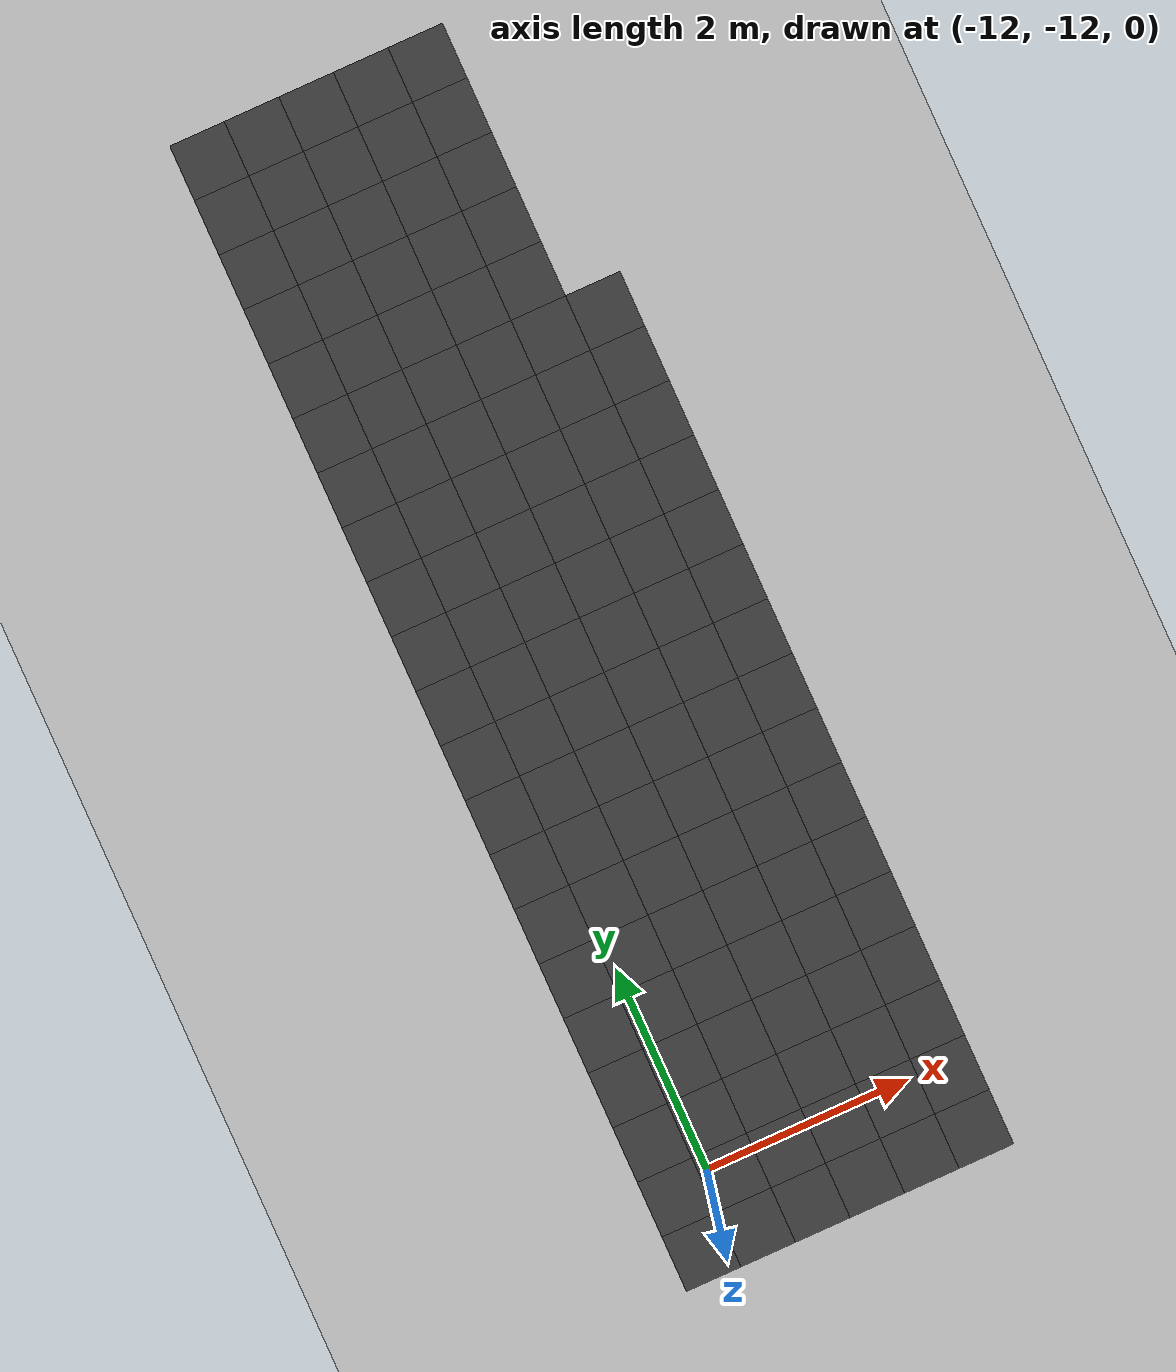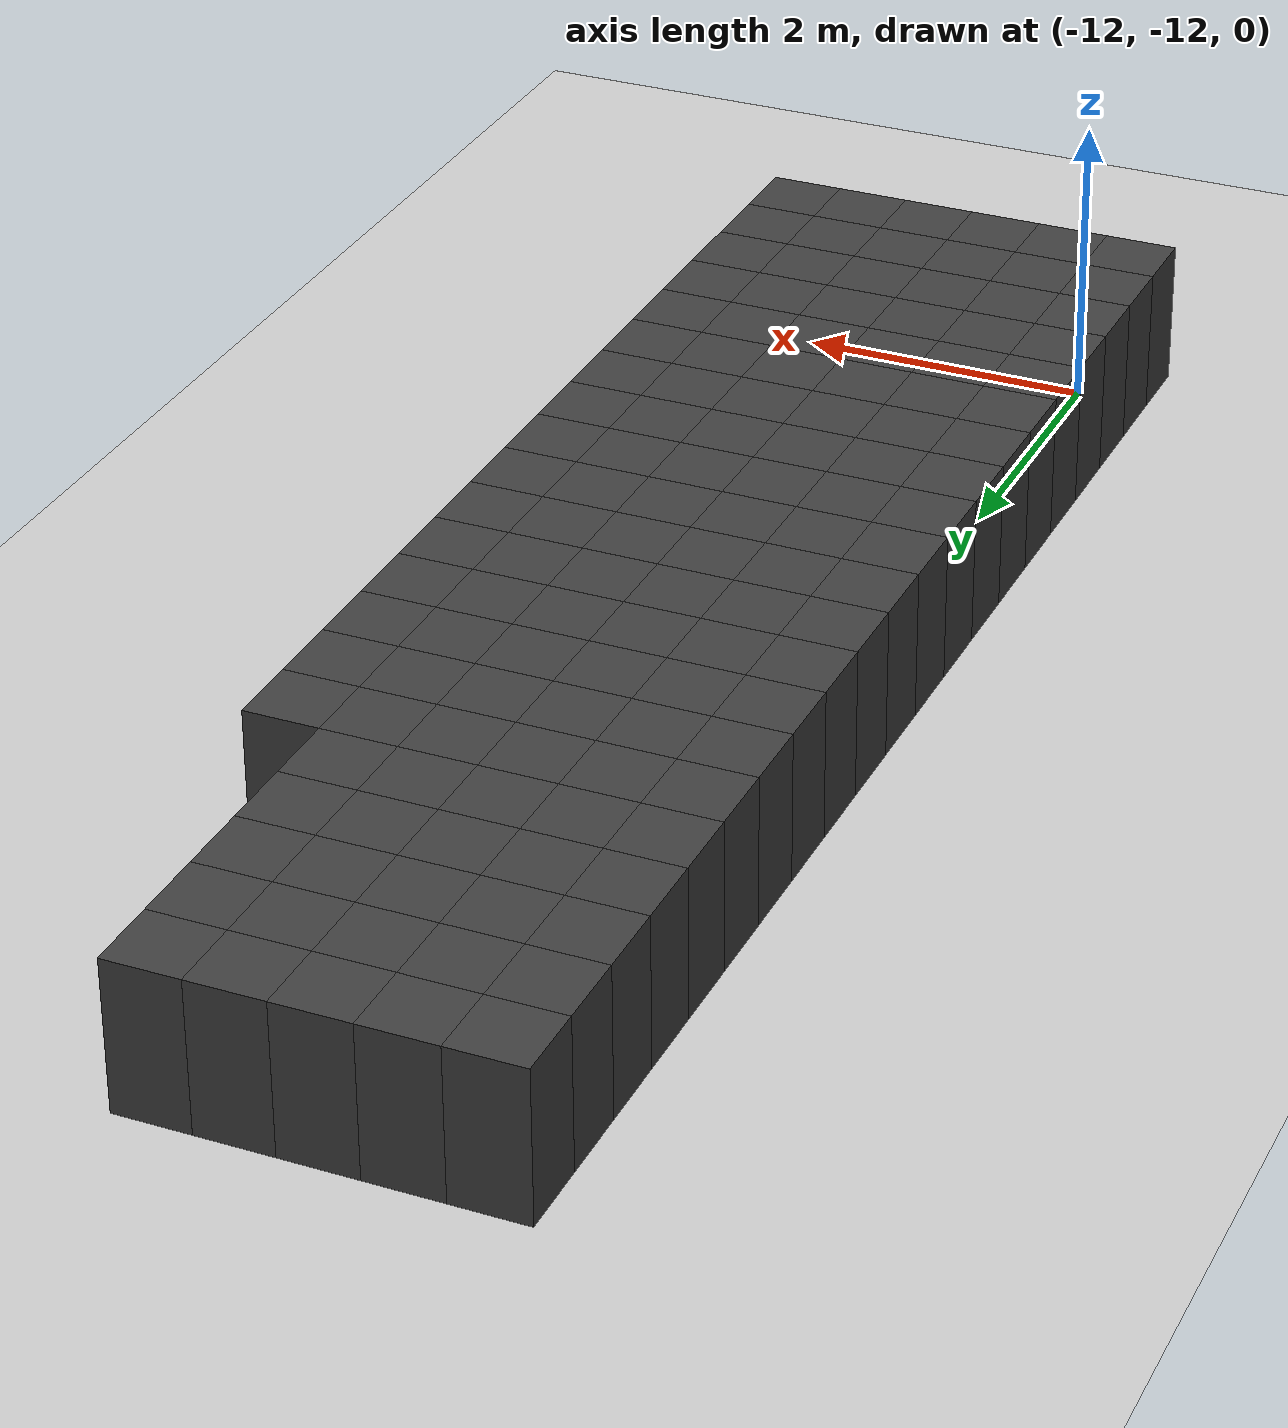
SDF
<sdf version="1.7">
 <world name="map_14547">
  <model name="ground_plane">
   <static>true</static>
   <link name="link">
    <collision name="collision">
     <geometry><plane><normal>0 0 1</normal><size>200 200</size></plane></geometry>
    </collision>
    <visual name="visual">
     <geometry><plane><normal>0 0 1</normal><size>200 200</size></plane></geometry>
     <material><ambient>0.8 0.8 0.8 1</ambient><diffuse>0.8 0.8 0.8 1</diffuse></material>
    </visual>
   </link>
  </model>
  <model name="maze_environment">
   <static>true</static>
   <link name="wall_1027">
    <pose>-12.250 -2.250 0.500 0 0 0</pose>
    <collision name="col"><geometry><box><size>0.5 0.5 1.0</size></box></geometry></collision>
    <visual name="vis">
     <geometry><box><size>0.5 0.5 1.0</size></box></geometry>
     <material><ambient>0.15 0.15 0.15 1</ambient><diffuse>0.25 0.25 0.25 1</diffuse></material>
    </visual>
   </link>
   <link name="wall_1028">
    <pose>-11.750 -2.250 0.500 0 0 0</pose>
    <collision name="col"><geometry><box><size>0.5 0.5 1.0</size></box></geometry></collision>
    <visual name="vis">
     <geometry><box><size>0.5 0.5 1.0</size></box></geometry>
     <material><ambient>0.15 0.15 0.15 1</ambient><diffuse>0.25 0.25 0.25 1</diffuse></material>
    </visual>
   </link>
   <link name="wall_1029">
    <pose>-11.250 -2.250 0.500 0 0 0</pose>
    <collision name="col"><geometry><box><size>0.5 0.5 1.0</size></box></geometry></collision>
    <visual name="vis">
     <geometry><box><size>0.5 0.5 1.0</size></box></geometry>
     <material><ambient>0.15 0.15 0.15 1</ambient><diffuse>0.25 0.25 0.25 1</diffuse></material>
    </visual>
   </link>
   <link name="wall_1030">
    <pose>-10.750 -2.250 0.500 0 0 0</pose>
    <collision name="col"><geometry><box><size>0.5 0.5 1.0</size></box></geometry></collision>
    <visual name="vis">
     <geometry><box><size>0.5 0.5 1.0</size></box></geometry>
     <material><ambient>0.15 0.15 0.15 1</ambient><diffuse>0.25 0.25 0.25 1</diffuse></material>
    </visual>
   </link>
   <link name="wall_1031">
    <pose>-10.250 -2.250 0.500 0 0 0</pose>
    <collision name="col"><geometry><box><size>0.5 0.5 1.0</size></box></geometry></collision>
    <visual name="vis">
     <geometry><box><size>0.5 0.5 1.0</size></box></geometry>
     <material><ambient>0.15 0.15 0.15 1</ambient><diffuse>0.25 0.25 0.25 1</diffuse></material>
    </visual>
   </link>
   <link name="wall_1057">
    <pose>-12.250 -2.750 0.500 0 0 0</pose>
    <collision name="col"><geometry><box><size>0.5 0.5 1.0</size></box></geometry></collision>
    <visual name="vis">
     <geometry><box><size>0.5 0.5 1.0</size></box></geometry>
     <material><ambient>0.15 0.15 0.15 1</ambient><diffuse>0.25 0.25 0.25 1</diffuse></material>
    </visual>
   </link>
   <link name="wall_1058">
    <pose>-11.750 -2.750 0.500 0 0 0</pose>
    <collision name="col"><geometry><box><size>0.5 0.5 1.0</size></box></geometry></collision>
    <visual name="vis">
     <geometry><box><size>0.5 0.5 1.0</size></box></geometry>
     <material><ambient>0.15 0.15 0.15 1</ambient><diffuse>0.25 0.25 0.25 1</diffuse></material>
    </visual>
   </link>
   <link name="wall_1059">
    <pose>-11.250 -2.750 0.500 0 0 0</pose>
    <collision name="col"><geometry><box><size>0.5 0.5 1.0</size></box></geometry></collision>
    <visual name="vis">
     <geometry><box><size>0.5 0.5 1.0</size></box></geometry>
     <material><ambient>0.15 0.15 0.15 1</ambient><diffuse>0.25 0.25 0.25 1</diffuse></material>
    </visual>
   </link>
   <link name="wall_1060">
    <pose>-10.750 -2.750 0.500 0 0 0</pose>
    <collision name="col"><geometry><box><size>0.5 0.5 1.0</size></box></geometry></collision>
    <visual name="vis">
     <geometry><box><size>0.5 0.5 1.0</size></box></geometry>
     <material><ambient>0.15 0.15 0.15 1</ambient><diffuse>0.25 0.25 0.25 1</diffuse></material>
    </visual>
   </link>
   <link name="wall_1061">
    <pose>-10.250 -2.750 0.500 0 0 0</pose>
    <collision name="col"><geometry><box><size>0.5 0.5 1.0</size></box></geometry></collision>
    <visual name="vis">
     <geometry><box><size>0.5 0.5 1.0</size></box></geometry>
     <material><ambient>0.15 0.15 0.15 1</ambient><diffuse>0.25 0.25 0.25 1</diffuse></material>
    </visual>
   </link>
   <link name="wall_1090">
    <pose>-12.250 -3.250 0.500 0 0 0</pose>
    <collision name="col"><geometry><box><size>0.5 0.5 1.0</size></box></geometry></collision>
    <visual name="vis">
     <geometry><box><size>0.5 0.5 1.0</size></box></geometry>
     <material><ambient>0.15 0.15 0.15 1</ambient><diffuse>0.25 0.25 0.25 1</diffuse></material>
    </visual>
   </link>
   <link name="wall_1091">
    <pose>-11.750 -3.250 0.500 0 0 0</pose>
    <collision name="col"><geometry><box><size>0.5 0.5 1.0</size></box></geometry></collision>
    <visual name="vis">
     <geometry><box><size>0.5 0.5 1.0</size></box></geometry>
     <material><ambient>0.15 0.15 0.15 1</ambient><diffuse>0.25 0.25 0.25 1</diffuse></material>
    </visual>
   </link>
   <link name="wall_1092">
    <pose>-11.250 -3.250 0.500 0 0 0</pose>
    <collision name="col"><geometry><box><size>0.5 0.5 1.0</size></box></geometry></collision>
    <visual name="vis">
     <geometry><box><size>0.5 0.5 1.0</size></box></geometry>
     <material><ambient>0.15 0.15 0.15 1</ambient><diffuse>0.25 0.25 0.25 1</diffuse></material>
    </visual>
   </link>
   <link name="wall_1093">
    <pose>-10.750 -3.250 0.500 0 0 0</pose>
    <collision name="col"><geometry><box><size>0.5 0.5 1.0</size></box></geometry></collision>
    <visual name="vis">
     <geometry><box><size>0.5 0.5 1.0</size></box></geometry>
     <material><ambient>0.15 0.15 0.15 1</ambient><diffuse>0.25 0.25 0.25 1</diffuse></material>
    </visual>
   </link>
   <link name="wall_1094">
    <pose>-10.250 -3.250 0.500 0 0 0</pose>
    <collision name="col"><geometry><box><size>0.5 0.5 1.0</size></box></geometry></collision>
    <visual name="vis">
     <geometry><box><size>0.5 0.5 1.0</size></box></geometry>
     <material><ambient>0.15 0.15 0.15 1</ambient><diffuse>0.25 0.25 0.25 1</diffuse></material>
    </visual>
   </link>
   <link name="wall_1124">
    <pose>-12.250 -3.750 0.500 0 0 0</pose>
    <collision name="col"><geometry><box><size>0.5 0.5 1.0</size></box></geometry></collision>
    <visual name="vis">
     <geometry><box><size>0.5 0.5 1.0</size></box></geometry>
     <material><ambient>0.15 0.15 0.15 1</ambient><diffuse>0.25 0.25 0.25 1</diffuse></material>
    </visual>
   </link>
   <link name="wall_1125">
    <pose>-11.750 -3.750 0.500 0 0 0</pose>
    <collision name="col"><geometry><box><size>0.5 0.5 1.0</size></box></geometry></collision>
    <visual name="vis">
     <geometry><box><size>0.5 0.5 1.0</size></box></geometry>
     <material><ambient>0.15 0.15 0.15 1</ambient><diffuse>0.25 0.25 0.25 1</diffuse></material>
    </visual>
   </link>
   <link name="wall_1126">
    <pose>-11.250 -3.750 0.500 0 0 0</pose>
    <collision name="col"><geometry><box><size>0.5 0.5 1.0</size></box></geometry></collision>
    <visual name="vis">
     <geometry><box><size>0.5 0.5 1.0</size></box></geometry>
     <material><ambient>0.15 0.15 0.15 1</ambient><diffuse>0.25 0.25 0.25 1</diffuse></material>
    </visual>
   </link>
   <link name="wall_1127">
    <pose>-10.750 -3.750 0.500 0 0 0</pose>
    <collision name="col"><geometry><box><size>0.5 0.5 1.0</size></box></geometry></collision>
    <visual name="vis">
     <geometry><box><size>0.5 0.5 1.0</size></box></geometry>
     <material><ambient>0.15 0.15 0.15 1</ambient><diffuse>0.25 0.25 0.25 1</diffuse></material>
    </visual>
   </link>
   <link name="wall_1128">
    <pose>-10.250 -3.750 0.500 0 0 0</pose>
    <collision name="col"><geometry><box><size>0.5 0.5 1.0</size></box></geometry></collision>
    <visual name="vis">
     <geometry><box><size>0.5 0.5 1.0</size></box></geometry>
     <material><ambient>0.15 0.15 0.15 1</ambient><diffuse>0.25 0.25 0.25 1</diffuse></material>
    </visual>
   </link>
   <link name="wall_1160">
    <pose>-12.250 -4.250 0.500 0 0 0</pose>
    <collision name="col"><geometry><box><size>0.5 0.5 1.0</size></box></geometry></collision>
    <visual name="vis">
     <geometry><box><size>0.5 0.5 1.0</size></box></geometry>
     <material><ambient>0.15 0.15 0.15 1</ambient><diffuse>0.25 0.25 0.25 1</diffuse></material>
    </visual>
   </link>
   <link name="wall_1161">
    <pose>-11.750 -4.250 0.500 0 0 0</pose>
    <collision name="col"><geometry><box><size>0.5 0.5 1.0</size></box></geometry></collision>
    <visual name="vis">
     <geometry><box><size>0.5 0.5 1.0</size></box></geometry>
     <material><ambient>0.15 0.15 0.15 1</ambient><diffuse>0.25 0.25 0.25 1</diffuse></material>
    </visual>
   </link>
   <link name="wall_1162">
    <pose>-11.250 -4.250 0.500 0 0 0</pose>
    <collision name="col"><geometry><box><size>0.5 0.5 1.0</size></box></geometry></collision>
    <visual name="vis">
     <geometry><box><size>0.5 0.5 1.0</size></box></geometry>
     <material><ambient>0.15 0.15 0.15 1</ambient><diffuse>0.25 0.25 0.25 1</diffuse></material>
    </visual>
   </link>
   <link name="wall_1163">
    <pose>-10.750 -4.250 0.500 0 0 0</pose>
    <collision name="col"><geometry><box><size>0.5 0.5 1.0</size></box></geometry></collision>
    <visual name="vis">
     <geometry><box><size>0.5 0.5 1.0</size></box></geometry>
     <material><ambient>0.15 0.15 0.15 1</ambient><diffuse>0.25 0.25 0.25 1</diffuse></material>
    </visual>
   </link>
   <link name="wall_1164">
    <pose>-10.250 -4.250 0.500 0 0 0</pose>
    <collision name="col"><geometry><box><size>0.5 0.5 1.0</size></box></geometry></collision>
    <visual name="vis">
     <geometry><box><size>0.5 0.5 1.0</size></box></geometry>
     <material><ambient>0.15 0.15 0.15 1</ambient><diffuse>0.25 0.25 0.25 1</diffuse></material>
    </visual>
   </link>
   <link name="wall_1197">
    <pose>-12.250 -4.750 0.500 0 0 0</pose>
    <collision name="col"><geometry><box><size>0.5 0.5 1.0</size></box></geometry></collision>
    <visual name="vis">
     <geometry><box><size>0.5 0.5 1.0</size></box></geometry>
     <material><ambient>0.15 0.15 0.15 1</ambient><diffuse>0.25 0.25 0.25 1</diffuse></material>
    </visual>
   </link>
   <link name="wall_1198">
    <pose>-11.750 -4.750 0.500 0 0 0</pose>
    <collision name="col"><geometry><box><size>0.5 0.5 1.0</size></box></geometry></collision>
    <visual name="vis">
     <geometry><box><size>0.5 0.5 1.0</size></box></geometry>
     <material><ambient>0.15 0.15 0.15 1</ambient><diffuse>0.25 0.25 0.25 1</diffuse></material>
    </visual>
   </link>
   <link name="wall_1199">
    <pose>-11.250 -4.750 0.500 0 0 0</pose>
    <collision name="col"><geometry><box><size>0.5 0.5 1.0</size></box></geometry></collision>
    <visual name="vis">
     <geometry><box><size>0.5 0.5 1.0</size></box></geometry>
     <material><ambient>0.15 0.15 0.15 1</ambient><diffuse>0.25 0.25 0.25 1</diffuse></material>
    </visual>
   </link>
   <link name="wall_1200">
    <pose>-10.750 -4.750 0.500 0 0 0</pose>
    <collision name="col"><geometry><box><size>0.5 0.5 1.0</size></box></geometry></collision>
    <visual name="vis">
     <geometry><box><size>0.5 0.5 1.0</size></box></geometry>
     <material><ambient>0.15 0.15 0.15 1</ambient><diffuse>0.25 0.25 0.25 1</diffuse></material>
    </visual>
   </link>
   <link name="wall_1201">
    <pose>-10.250 -4.750 0.500 0 0 0</pose>
    <collision name="col"><geometry><box><size>0.5 0.5 1.0</size></box></geometry></collision>
    <visual name="vis">
     <geometry><box><size>0.5 0.5 1.0</size></box></geometry>
     <material><ambient>0.15 0.15 0.15 1</ambient><diffuse>0.25 0.25 0.25 1</diffuse></material>
    </visual>
   </link>
   <link name="wall_1202">
    <pose>-9.750 -4.750 0.500 0 0 0</pose>
    <collision name="col"><geometry><box><size>0.5 0.5 1.0</size></box></geometry></collision>
    <visual name="vis">
     <geometry><box><size>0.5 0.5 1.0</size></box></geometry>
     <material><ambient>0.15 0.15 0.15 1</ambient><diffuse>0.25 0.25 0.25 1</diffuse></material>
    </visual>
   </link>
   <link name="wall_1240">
    <pose>-12.250 -5.250 0.500 0 0 0</pose>
    <collision name="col"><geometry><box><size>0.5 0.5 1.0</size></box></geometry></collision>
    <visual name="vis">
     <geometry><box><size>0.5 0.5 1.0</size></box></geometry>
     <material><ambient>0.15 0.15 0.15 1</ambient><diffuse>0.25 0.25 0.25 1</diffuse></material>
    </visual>
   </link>
   <link name="wall_1241">
    <pose>-11.750 -5.250 0.500 0 0 0</pose>
    <collision name="col"><geometry><box><size>0.5 0.5 1.0</size></box></geometry></collision>
    <visual name="vis">
     <geometry><box><size>0.5 0.5 1.0</size></box></geometry>
     <material><ambient>0.15 0.15 0.15 1</ambient><diffuse>0.25 0.25 0.25 1</diffuse></material>
    </visual>
   </link>
   <link name="wall_1242">
    <pose>-11.250 -5.250 0.500 0 0 0</pose>
    <collision name="col"><geometry><box><size>0.5 0.5 1.0</size></box></geometry></collision>
    <visual name="vis">
     <geometry><box><size>0.5 0.5 1.0</size></box></geometry>
     <material><ambient>0.15 0.15 0.15 1</ambient><diffuse>0.25 0.25 0.25 1</diffuse></material>
    </visual>
   </link>
   <link name="wall_1243">
    <pose>-10.750 -5.250 0.500 0 0 0</pose>
    <collision name="col"><geometry><box><size>0.5 0.5 1.0</size></box></geometry></collision>
    <visual name="vis">
     <geometry><box><size>0.5 0.5 1.0</size></box></geometry>
     <material><ambient>0.15 0.15 0.15 1</ambient><diffuse>0.25 0.25 0.25 1</diffuse></material>
    </visual>
   </link>
   <link name="wall_1244">
    <pose>-10.250 -5.250 0.500 0 0 0</pose>
    <collision name="col"><geometry><box><size>0.5 0.5 1.0</size></box></geometry></collision>
    <visual name="vis">
     <geometry><box><size>0.5 0.5 1.0</size></box></geometry>
     <material><ambient>0.15 0.15 0.15 1</ambient><diffuse>0.25 0.25 0.25 1</diffuse></material>
    </visual>
   </link>
   <link name="wall_1245">
    <pose>-9.750 -5.250 0.500 0 0 0</pose>
    <collision name="col"><geometry><box><size>0.5 0.5 1.0</size></box></geometry></collision>
    <visual name="vis">
     <geometry><box><size>0.5 0.5 1.0</size></box></geometry>
     <material><ambient>0.15 0.15 0.15 1</ambient><diffuse>0.25 0.25 0.25 1</diffuse></material>
    </visual>
   </link>
   <link name="wall_1280">
    <pose>-12.250 -5.750 0.500 0 0 0</pose>
    <collision name="col"><geometry><box><size>0.5 0.5 1.0</size></box></geometry></collision>
    <visual name="vis">
     <geometry><box><size>0.5 0.5 1.0</size></box></geometry>
     <material><ambient>0.15 0.15 0.15 1</ambient><diffuse>0.25 0.25 0.25 1</diffuse></material>
    </visual>
   </link>
   <link name="wall_1281">
    <pose>-11.750 -5.750 0.500 0 0 0</pose>
    <collision name="col"><geometry><box><size>0.5 0.5 1.0</size></box></geometry></collision>
    <visual name="vis">
     <geometry><box><size>0.5 0.5 1.0</size></box></geometry>
     <material><ambient>0.15 0.15 0.15 1</ambient><diffuse>0.25 0.25 0.25 1</diffuse></material>
    </visual>
   </link>
   <link name="wall_1282">
    <pose>-11.250 -5.750 0.500 0 0 0</pose>
    <collision name="col"><geometry><box><size>0.5 0.5 1.0</size></box></geometry></collision>
    <visual name="vis">
     <geometry><box><size>0.5 0.5 1.0</size></box></geometry>
     <material><ambient>0.15 0.15 0.15 1</ambient><diffuse>0.25 0.25 0.25 1</diffuse></material>
    </visual>
   </link>
   <link name="wall_1283">
    <pose>-10.750 -5.750 0.500 0 0 0</pose>
    <collision name="col"><geometry><box><size>0.5 0.5 1.0</size></box></geometry></collision>
    <visual name="vis">
     <geometry><box><size>0.5 0.5 1.0</size></box></geometry>
     <material><ambient>0.15 0.15 0.15 1</ambient><diffuse>0.25 0.25 0.25 1</diffuse></material>
    </visual>
   </link>
   <link name="wall_1284">
    <pose>-10.250 -5.750 0.500 0 0 0</pose>
    <collision name="col"><geometry><box><size>0.5 0.5 1.0</size></box></geometry></collision>
    <visual name="vis">
     <geometry><box><size>0.5 0.5 1.0</size></box></geometry>
     <material><ambient>0.15 0.15 0.15 1</ambient><diffuse>0.25 0.25 0.25 1</diffuse></material>
    </visual>
   </link>
   <link name="wall_1285">
    <pose>-9.750 -5.750 0.500 0 0 0</pose>
    <collision name="col"><geometry><box><size>0.5 0.5 1.0</size></box></geometry></collision>
    <visual name="vis">
     <geometry><box><size>0.5 0.5 1.0</size></box></geometry>
     <material><ambient>0.15 0.15 0.15 1</ambient><diffuse>0.25 0.25 0.25 1</diffuse></material>
    </visual>
   </link>
   <link name="wall_1316">
    <pose>-12.250 -6.250 0.500 0 0 0</pose>
    <collision name="col"><geometry><box><size>0.5 0.5 1.0</size></box></geometry></collision>
    <visual name="vis">
     <geometry><box><size>0.5 0.5 1.0</size></box></geometry>
     <material><ambient>0.15 0.15 0.15 1</ambient><diffuse>0.25 0.25 0.25 1</diffuse></material>
    </visual>
   </link>
   <link name="wall_1317">
    <pose>-11.750 -6.250 0.500 0 0 0</pose>
    <collision name="col"><geometry><box><size>0.5 0.5 1.0</size></box></geometry></collision>
    <visual name="vis">
     <geometry><box><size>0.5 0.5 1.0</size></box></geometry>
     <material><ambient>0.15 0.15 0.15 1</ambient><diffuse>0.25 0.25 0.25 1</diffuse></material>
    </visual>
   </link>
   <link name="wall_1318">
    <pose>-11.250 -6.250 0.500 0 0 0</pose>
    <collision name="col"><geometry><box><size>0.5 0.5 1.0</size></box></geometry></collision>
    <visual name="vis">
     <geometry><box><size>0.5 0.5 1.0</size></box></geometry>
     <material><ambient>0.15 0.15 0.15 1</ambient><diffuse>0.25 0.25 0.25 1</diffuse></material>
    </visual>
   </link>
   <link name="wall_1319">
    <pose>-10.750 -6.250 0.500 0 0 0</pose>
    <collision name="col"><geometry><box><size>0.5 0.5 1.0</size></box></geometry></collision>
    <visual name="vis">
     <geometry><box><size>0.5 0.5 1.0</size></box></geometry>
     <material><ambient>0.15 0.15 0.15 1</ambient><diffuse>0.25 0.25 0.25 1</diffuse></material>
    </visual>
   </link>
   <link name="wall_1320">
    <pose>-10.250 -6.250 0.500 0 0 0</pose>
    <collision name="col"><geometry><box><size>0.5 0.5 1.0</size></box></geometry></collision>
    <visual name="vis">
     <geometry><box><size>0.5 0.5 1.0</size></box></geometry>
     <material><ambient>0.15 0.15 0.15 1</ambient><diffuse>0.25 0.25 0.25 1</diffuse></material>
    </visual>
   </link>
   <link name="wall_1321">
    <pose>-9.750 -6.250 0.500 0 0 0</pose>
    <collision name="col"><geometry><box><size>0.5 0.5 1.0</size></box></geometry></collision>
    <visual name="vis">
     <geometry><box><size>0.5 0.5 1.0</size></box></geometry>
     <material><ambient>0.15 0.15 0.15 1</ambient><diffuse>0.25 0.25 0.25 1</diffuse></material>
    </visual>
   </link>
   <link name="wall_1344">
    <pose>-12.250 -6.750 0.500 0 0 0</pose>
    <collision name="col"><geometry><box><size>0.5 0.5 1.0</size></box></geometry></collision>
    <visual name="vis">
     <geometry><box><size>0.5 0.5 1.0</size></box></geometry>
     <material><ambient>0.15 0.15 0.15 1</ambient><diffuse>0.25 0.25 0.25 1</diffuse></material>
    </visual>
   </link>
   <link name="wall_1345">
    <pose>-11.750 -6.750 0.500 0 0 0</pose>
    <collision name="col"><geometry><box><size>0.5 0.5 1.0</size></box></geometry></collision>
    <visual name="vis">
     <geometry><box><size>0.5 0.5 1.0</size></box></geometry>
     <material><ambient>0.15 0.15 0.15 1</ambient><diffuse>0.25 0.25 0.25 1</diffuse></material>
    </visual>
   </link>
   <link name="wall_1346">
    <pose>-11.250 -6.750 0.500 0 0 0</pose>
    <collision name="col"><geometry><box><size>0.5 0.5 1.0</size></box></geometry></collision>
    <visual name="vis">
     <geometry><box><size>0.5 0.5 1.0</size></box></geometry>
     <material><ambient>0.15 0.15 0.15 1</ambient><diffuse>0.25 0.25 0.25 1</diffuse></material>
    </visual>
   </link>
   <link name="wall_1347">
    <pose>-10.750 -6.750 0.500 0 0 0</pose>
    <collision name="col"><geometry><box><size>0.5 0.5 1.0</size></box></geometry></collision>
    <visual name="vis">
     <geometry><box><size>0.5 0.5 1.0</size></box></geometry>
     <material><ambient>0.15 0.15 0.15 1</ambient><diffuse>0.25 0.25 0.25 1</diffuse></material>
    </visual>
   </link>
   <link name="wall_1348">
    <pose>-10.250 -6.750 0.500 0 0 0</pose>
    <collision name="col"><geometry><box><size>0.5 0.5 1.0</size></box></geometry></collision>
    <visual name="vis">
     <geometry><box><size>0.5 0.5 1.0</size></box></geometry>
     <material><ambient>0.15 0.15 0.15 1</ambient><diffuse>0.25 0.25 0.25 1</diffuse></material>
    </visual>
   </link>
   <link name="wall_1349">
    <pose>-9.750 -6.750 0.500 0 0 0</pose>
    <collision name="col"><geometry><box><size>0.5 0.5 1.0</size></box></geometry></collision>
    <visual name="vis">
     <geometry><box><size>0.5 0.5 1.0</size></box></geometry>
     <material><ambient>0.15 0.15 0.15 1</ambient><diffuse>0.25 0.25 0.25 1</diffuse></material>
    </visual>
   </link>
   <link name="wall_1374">
    <pose>-12.250 -7.250 0.500 0 0 0</pose>
    <collision name="col"><geometry><box><size>0.5 0.5 1.0</size></box></geometry></collision>
    <visual name="vis">
     <geometry><box><size>0.5 0.5 1.0</size></box></geometry>
     <material><ambient>0.15 0.15 0.15 1</ambient><diffuse>0.25 0.25 0.25 1</diffuse></material>
    </visual>
   </link>
   <link name="wall_1375">
    <pose>-11.750 -7.250 0.500 0 0 0</pose>
    <collision name="col"><geometry><box><size>0.5 0.5 1.0</size></box></geometry></collision>
    <visual name="vis">
     <geometry><box><size>0.5 0.5 1.0</size></box></geometry>
     <material><ambient>0.15 0.15 0.15 1</ambient><diffuse>0.25 0.25 0.25 1</diffuse></material>
    </visual>
   </link>
   <link name="wall_1376">
    <pose>-11.250 -7.250 0.500 0 0 0</pose>
    <collision name="col"><geometry><box><size>0.5 0.5 1.0</size></box></geometry></collision>
    <visual name="vis">
     <geometry><box><size>0.5 0.5 1.0</size></box></geometry>
     <material><ambient>0.15 0.15 0.15 1</ambient><diffuse>0.25 0.25 0.25 1</diffuse></material>
    </visual>
   </link>
   <link name="wall_1377">
    <pose>-10.750 -7.250 0.500 0 0 0</pose>
    <collision name="col"><geometry><box><size>0.5 0.5 1.0</size></box></geometry></collision>
    <visual name="vis">
     <geometry><box><size>0.5 0.5 1.0</size></box></geometry>
     <material><ambient>0.15 0.15 0.15 1</ambient><diffuse>0.25 0.25 0.25 1</diffuse></material>
    </visual>
   </link>
   <link name="wall_1378">
    <pose>-10.250 -7.250 0.500 0 0 0</pose>
    <collision name="col"><geometry><box><size>0.5 0.5 1.0</size></box></geometry></collision>
    <visual name="vis">
     <geometry><box><size>0.5 0.5 1.0</size></box></geometry>
     <material><ambient>0.15 0.15 0.15 1</ambient><diffuse>0.25 0.25 0.25 1</diffuse></material>
    </visual>
   </link>
   <link name="wall_1379">
    <pose>-9.750 -7.250 0.500 0 0 0</pose>
    <collision name="col"><geometry><box><size>0.5 0.5 1.0</size></box></geometry></collision>
    <visual name="vis">
     <geometry><box><size>0.5 0.5 1.0</size></box></geometry>
     <material><ambient>0.15 0.15 0.15 1</ambient><diffuse>0.25 0.25 0.25 1</diffuse></material>
    </visual>
   </link>
   <link name="wall_1405">
    <pose>-12.250 -7.750 0.500 0 0 0</pose>
    <collision name="col"><geometry><box><size>0.5 0.5 1.0</size></box></geometry></collision>
    <visual name="vis">
     <geometry><box><size>0.5 0.5 1.0</size></box></geometry>
     <material><ambient>0.15 0.15 0.15 1</ambient><diffuse>0.25 0.25 0.25 1</diffuse></material>
    </visual>
   </link>
   <link name="wall_1406">
    <pose>-11.750 -7.750 0.500 0 0 0</pose>
    <collision name="col"><geometry><box><size>0.5 0.5 1.0</size></box></geometry></collision>
    <visual name="vis">
     <geometry><box><size>0.5 0.5 1.0</size></box></geometry>
     <material><ambient>0.15 0.15 0.15 1</ambient><diffuse>0.25 0.25 0.25 1</diffuse></material>
    </visual>
   </link>
   <link name="wall_1407">
    <pose>-11.250 -7.750 0.500 0 0 0</pose>
    <collision name="col"><geometry><box><size>0.5 0.5 1.0</size></box></geometry></collision>
    <visual name="vis">
     <geometry><box><size>0.5 0.5 1.0</size></box></geometry>
     <material><ambient>0.15 0.15 0.15 1</ambient><diffuse>0.25 0.25 0.25 1</diffuse></material>
    </visual>
   </link>
   <link name="wall_1408">
    <pose>-10.750 -7.750 0.500 0 0 0</pose>
    <collision name="col"><geometry><box><size>0.5 0.5 1.0</size></box></geometry></collision>
    <visual name="vis">
     <geometry><box><size>0.5 0.5 1.0</size></box></geometry>
     <material><ambient>0.15 0.15 0.15 1</ambient><diffuse>0.25 0.25 0.25 1</diffuse></material>
    </visual>
   </link>
   <link name="wall_1409">
    <pose>-10.250 -7.750 0.500 0 0 0</pose>
    <collision name="col"><geometry><box><size>0.5 0.5 1.0</size></box></geometry></collision>
    <visual name="vis">
     <geometry><box><size>0.5 0.5 1.0</size></box></geometry>
     <material><ambient>0.15 0.15 0.15 1</ambient><diffuse>0.25 0.25 0.25 1</diffuse></material>
    </visual>
   </link>
   <link name="wall_1410">
    <pose>-9.750 -7.750 0.500 0 0 0</pose>
    <collision name="col"><geometry><box><size>0.5 0.5 1.0</size></box></geometry></collision>
    <visual name="vis">
     <geometry><box><size>0.5 0.5 1.0</size></box></geometry>
     <material><ambient>0.15 0.15 0.15 1</ambient><diffuse>0.25 0.25 0.25 1</diffuse></material>
    </visual>
   </link>
   <link name="wall_1436">
    <pose>-12.250 -8.250 0.500 0 0 0</pose>
    <collision name="col"><geometry><box><size>0.5 0.5 1.0</size></box></geometry></collision>
    <visual name="vis">
     <geometry><box><size>0.5 0.5 1.0</size></box></geometry>
     <material><ambient>0.15 0.15 0.15 1</ambient><diffuse>0.25 0.25 0.25 1</diffuse></material>
    </visual>
   </link>
   <link name="wall_1437">
    <pose>-11.750 -8.250 0.500 0 0 0</pose>
    <collision name="col"><geometry><box><size>0.5 0.5 1.0</size></box></geometry></collision>
    <visual name="vis">
     <geometry><box><size>0.5 0.5 1.0</size></box></geometry>
     <material><ambient>0.15 0.15 0.15 1</ambient><diffuse>0.25 0.25 0.25 1</diffuse></material>
    </visual>
   </link>
   <link name="wall_1438">
    <pose>-11.250 -8.250 0.500 0 0 0</pose>
    <collision name="col"><geometry><box><size>0.5 0.5 1.0</size></box></geometry></collision>
    <visual name="vis">
     <geometry><box><size>0.5 0.5 1.0</size></box></geometry>
     <material><ambient>0.15 0.15 0.15 1</ambient><diffuse>0.25 0.25 0.25 1</diffuse></material>
    </visual>
   </link>
   <link name="wall_1439">
    <pose>-10.750 -8.250 0.500 0 0 0</pose>
    <collision name="col"><geometry><box><size>0.5 0.5 1.0</size></box></geometry></collision>
    <visual name="vis">
     <geometry><box><size>0.5 0.5 1.0</size></box></geometry>
     <material><ambient>0.15 0.15 0.15 1</ambient><diffuse>0.25 0.25 0.25 1</diffuse></material>
    </visual>
   </link>
   <link name="wall_1440">
    <pose>-10.250 -8.250 0.500 0 0 0</pose>
    <collision name="col"><geometry><box><size>0.5 0.5 1.0</size></box></geometry></collision>
    <visual name="vis">
     <geometry><box><size>0.5 0.5 1.0</size></box></geometry>
     <material><ambient>0.15 0.15 0.15 1</ambient><diffuse>0.25 0.25 0.25 1</diffuse></material>
    </visual>
   </link>
   <link name="wall_1441">
    <pose>-9.750 -8.250 0.500 0 0 0</pose>
    <collision name="col"><geometry><box><size>0.5 0.5 1.0</size></box></geometry></collision>
    <visual name="vis">
     <geometry><box><size>0.5 0.5 1.0</size></box></geometry>
     <material><ambient>0.15 0.15 0.15 1</ambient><diffuse>0.25 0.25 0.25 1</diffuse></material>
    </visual>
   </link>
   <link name="wall_1472">
    <pose>-12.250 -8.750 0.500 0 0 0</pose>
    <collision name="col"><geometry><box><size>0.5 0.5 1.0</size></box></geometry></collision>
    <visual name="vis">
     <geometry><box><size>0.5 0.5 1.0</size></box></geometry>
     <material><ambient>0.15 0.15 0.15 1</ambient><diffuse>0.25 0.25 0.25 1</diffuse></material>
    </visual>
   </link>
   <link name="wall_1473">
    <pose>-11.750 -8.750 0.500 0 0 0</pose>
    <collision name="col"><geometry><box><size>0.5 0.5 1.0</size></box></geometry></collision>
    <visual name="vis">
     <geometry><box><size>0.5 0.5 1.0</size></box></geometry>
     <material><ambient>0.15 0.15 0.15 1</ambient><diffuse>0.25 0.25 0.25 1</diffuse></material>
    </visual>
   </link>
   <link name="wall_1474">
    <pose>-11.250 -8.750 0.500 0 0 0</pose>
    <collision name="col"><geometry><box><size>0.5 0.5 1.0</size></box></geometry></collision>
    <visual name="vis">
     <geometry><box><size>0.5 0.5 1.0</size></box></geometry>
     <material><ambient>0.15 0.15 0.15 1</ambient><diffuse>0.25 0.25 0.25 1</diffuse></material>
    </visual>
   </link>
   <link name="wall_1475">
    <pose>-10.750 -8.750 0.500 0 0 0</pose>
    <collision name="col"><geometry><box><size>0.5 0.5 1.0</size></box></geometry></collision>
    <visual name="vis">
     <geometry><box><size>0.5 0.5 1.0</size></box></geometry>
     <material><ambient>0.15 0.15 0.15 1</ambient><diffuse>0.25 0.25 0.25 1</diffuse></material>
    </visual>
   </link>
   <link name="wall_1476">
    <pose>-10.250 -8.750 0.500 0 0 0</pose>
    <collision name="col"><geometry><box><size>0.5 0.5 1.0</size></box></geometry></collision>
    <visual name="vis">
     <geometry><box><size>0.5 0.5 1.0</size></box></geometry>
     <material><ambient>0.15 0.15 0.15 1</ambient><diffuse>0.25 0.25 0.25 1</diffuse></material>
    </visual>
   </link>
   <link name="wall_1477">
    <pose>-9.750 -8.750 0.500 0 0 0</pose>
    <collision name="col"><geometry><box><size>0.5 0.5 1.0</size></box></geometry></collision>
    <visual name="vis">
     <geometry><box><size>0.5 0.5 1.0</size></box></geometry>
     <material><ambient>0.15 0.15 0.15 1</ambient><diffuse>0.25 0.25 0.25 1</diffuse></material>
    </visual>
   </link>
   <link name="wall_1509">
    <pose>-12.250 -9.250 0.500 0 0 0</pose>
    <collision name="col"><geometry><box><size>0.5 0.5 1.0</size></box></geometry></collision>
    <visual name="vis">
     <geometry><box><size>0.5 0.5 1.0</size></box></geometry>
     <material><ambient>0.15 0.15 0.15 1</ambient><diffuse>0.25 0.25 0.25 1</diffuse></material>
    </visual>
   </link>
   <link name="wall_1510">
    <pose>-11.750 -9.250 0.500 0 0 0</pose>
    <collision name="col"><geometry><box><size>0.5 0.5 1.0</size></box></geometry></collision>
    <visual name="vis">
     <geometry><box><size>0.5 0.5 1.0</size></box></geometry>
     <material><ambient>0.15 0.15 0.15 1</ambient><diffuse>0.25 0.25 0.25 1</diffuse></material>
    </visual>
   </link>
   <link name="wall_1511">
    <pose>-11.250 -9.250 0.500 0 0 0</pose>
    <collision name="col"><geometry><box><size>0.5 0.5 1.0</size></box></geometry></collision>
    <visual name="vis">
     <geometry><box><size>0.5 0.5 1.0</size></box></geometry>
     <material><ambient>0.15 0.15 0.15 1</ambient><diffuse>0.25 0.25 0.25 1</diffuse></material>
    </visual>
   </link>
   <link name="wall_1512">
    <pose>-10.750 -9.250 0.500 0 0 0</pose>
    <collision name="col"><geometry><box><size>0.5 0.5 1.0</size></box></geometry></collision>
    <visual name="vis">
     <geometry><box><size>0.5 0.5 1.0</size></box></geometry>
     <material><ambient>0.15 0.15 0.15 1</ambient><diffuse>0.25 0.25 0.25 1</diffuse></material>
    </visual>
   </link>
   <link name="wall_1513">
    <pose>-10.250 -9.250 0.500 0 0 0</pose>
    <collision name="col"><geometry><box><size>0.5 0.5 1.0</size></box></geometry></collision>
    <visual name="vis">
     <geometry><box><size>0.5 0.5 1.0</size></box></geometry>
     <material><ambient>0.15 0.15 0.15 1</ambient><diffuse>0.25 0.25 0.25 1</diffuse></material>
    </visual>
   </link>
   <link name="wall_1514">
    <pose>-9.750 -9.250 0.500 0 0 0</pose>
    <collision name="col"><geometry><box><size>0.5 0.5 1.0</size></box></geometry></collision>
    <visual name="vis">
     <geometry><box><size>0.5 0.5 1.0</size></box></geometry>
     <material><ambient>0.15 0.15 0.15 1</ambient><diffuse>0.25 0.25 0.25 1</diffuse></material>
    </visual>
   </link>
   <link name="wall_1552">
    <pose>-12.250 -9.750 0.500 0 0 0</pose>
    <collision name="col"><geometry><box><size>0.5 0.5 1.0</size></box></geometry></collision>
    <visual name="vis">
     <geometry><box><size>0.5 0.5 1.0</size></box></geometry>
     <material><ambient>0.15 0.15 0.15 1</ambient><diffuse>0.25 0.25 0.25 1</diffuse></material>
    </visual>
   </link>
   <link name="wall_1553">
    <pose>-11.750 -9.750 0.500 0 0 0</pose>
    <collision name="col"><geometry><box><size>0.5 0.5 1.0</size></box></geometry></collision>
    <visual name="vis">
     <geometry><box><size>0.5 0.5 1.0</size></box></geometry>
     <material><ambient>0.15 0.15 0.15 1</ambient><diffuse>0.25 0.25 0.25 1</diffuse></material>
    </visual>
   </link>
   <link name="wall_1554">
    <pose>-11.250 -9.750 0.500 0 0 0</pose>
    <collision name="col"><geometry><box><size>0.5 0.5 1.0</size></box></geometry></collision>
    <visual name="vis">
     <geometry><box><size>0.5 0.5 1.0</size></box></geometry>
     <material><ambient>0.15 0.15 0.15 1</ambient><diffuse>0.25 0.25 0.25 1</diffuse></material>
    </visual>
   </link>
   <link name="wall_1555">
    <pose>-10.750 -9.750 0.500 0 0 0</pose>
    <collision name="col"><geometry><box><size>0.5 0.5 1.0</size></box></geometry></collision>
    <visual name="vis">
     <geometry><box><size>0.5 0.5 1.0</size></box></geometry>
     <material><ambient>0.15 0.15 0.15 1</ambient><diffuse>0.25 0.25 0.25 1</diffuse></material>
    </visual>
   </link>
   <link name="wall_1556">
    <pose>-10.250 -9.750 0.500 0 0 0</pose>
    <collision name="col"><geometry><box><size>0.5 0.5 1.0</size></box></geometry></collision>
    <visual name="vis">
     <geometry><box><size>0.5 0.5 1.0</size></box></geometry>
     <material><ambient>0.15 0.15 0.15 1</ambient><diffuse>0.25 0.25 0.25 1</diffuse></material>
    </visual>
   </link>
   <link name="wall_1557">
    <pose>-9.750 -9.750 0.500 0 0 0</pose>
    <collision name="col"><geometry><box><size>0.5 0.5 1.0</size></box></geometry></collision>
    <visual name="vis">
     <geometry><box><size>0.5 0.5 1.0</size></box></geometry>
     <material><ambient>0.15 0.15 0.15 1</ambient><diffuse>0.25 0.25 0.25 1</diffuse></material>
    </visual>
   </link>
   <link name="wall_1595">
    <pose>-12.250 -10.250 0.500 0 0 0</pose>
    <collision name="col"><geometry><box><size>0.5 0.5 1.0</size></box></geometry></collision>
    <visual name="vis">
     <geometry><box><size>0.5 0.5 1.0</size></box></geometry>
     <material><ambient>0.15 0.15 0.15 1</ambient><diffuse>0.25 0.25 0.25 1</diffuse></material>
    </visual>
   </link>
   <link name="wall_1596">
    <pose>-11.750 -10.250 0.500 0 0 0</pose>
    <collision name="col"><geometry><box><size>0.5 0.5 1.0</size></box></geometry></collision>
    <visual name="vis">
     <geometry><box><size>0.5 0.5 1.0</size></box></geometry>
     <material><ambient>0.15 0.15 0.15 1</ambient><diffuse>0.25 0.25 0.25 1</diffuse></material>
    </visual>
   </link>
   <link name="wall_1597">
    <pose>-11.250 -10.250 0.500 0 0 0</pose>
    <collision name="col"><geometry><box><size>0.5 0.5 1.0</size></box></geometry></collision>
    <visual name="vis">
     <geometry><box><size>0.5 0.5 1.0</size></box></geometry>
     <material><ambient>0.15 0.15 0.15 1</ambient><diffuse>0.25 0.25 0.25 1</diffuse></material>
    </visual>
   </link>
   <link name="wall_1598">
    <pose>-10.750 -10.250 0.500 0 0 0</pose>
    <collision name="col"><geometry><box><size>0.5 0.5 1.0</size></box></geometry></collision>
    <visual name="vis">
     <geometry><box><size>0.5 0.5 1.0</size></box></geometry>
     <material><ambient>0.15 0.15 0.15 1</ambient><diffuse>0.25 0.25 0.25 1</diffuse></material>
    </visual>
   </link>
   <link name="wall_1599">
    <pose>-10.250 -10.250 0.500 0 0 0</pose>
    <collision name="col"><geometry><box><size>0.5 0.5 1.0</size></box></geometry></collision>
    <visual name="vis">
     <geometry><box><size>0.5 0.5 1.0</size></box></geometry>
     <material><ambient>0.15 0.15 0.15 1</ambient><diffuse>0.25 0.25 0.25 1</diffuse></material>
    </visual>
   </link>
   <link name="wall_1600">
    <pose>-9.750 -10.250 0.500 0 0 0</pose>
    <collision name="col"><geometry><box><size>0.5 0.5 1.0</size></box></geometry></collision>
    <visual name="vis">
     <geometry><box><size>0.5 0.5 1.0</size></box></geometry>
     <material><ambient>0.15 0.15 0.15 1</ambient><diffuse>0.25 0.25 0.25 1</diffuse></material>
    </visual>
   </link>
   <link name="wall_1638">
    <pose>-12.250 -10.750 0.500 0 0 0</pose>
    <collision name="col"><geometry><box><size>0.5 0.5 1.0</size></box></geometry></collision>
    <visual name="vis">
     <geometry><box><size>0.5 0.5 1.0</size></box></geometry>
     <material><ambient>0.15 0.15 0.15 1</ambient><diffuse>0.25 0.25 0.25 1</diffuse></material>
    </visual>
   </link>
   <link name="wall_1639">
    <pose>-11.750 -10.750 0.500 0 0 0</pose>
    <collision name="col"><geometry><box><size>0.5 0.5 1.0</size></box></geometry></collision>
    <visual name="vis">
     <geometry><box><size>0.5 0.5 1.0</size></box></geometry>
     <material><ambient>0.15 0.15 0.15 1</ambient><diffuse>0.25 0.25 0.25 1</diffuse></material>
    </visual>
   </link>
   <link name="wall_1640">
    <pose>-11.250 -10.750 0.500 0 0 0</pose>
    <collision name="col"><geometry><box><size>0.5 0.5 1.0</size></box></geometry></collision>
    <visual name="vis">
     <geometry><box><size>0.5 0.5 1.0</size></box></geometry>
     <material><ambient>0.15 0.15 0.15 1</ambient><diffuse>0.25 0.25 0.25 1</diffuse></material>
    </visual>
   </link>
   <link name="wall_1641">
    <pose>-10.750 -10.750 0.500 0 0 0</pose>
    <collision name="col"><geometry><box><size>0.5 0.5 1.0</size></box></geometry></collision>
    <visual name="vis">
     <geometry><box><size>0.5 0.5 1.0</size></box></geometry>
     <material><ambient>0.15 0.15 0.15 1</ambient><diffuse>0.25 0.25 0.25 1</diffuse></material>
    </visual>
   </link>
   <link name="wall_1642">
    <pose>-10.250 -10.750 0.500 0 0 0</pose>
    <collision name="col"><geometry><box><size>0.5 0.5 1.0</size></box></geometry></collision>
    <visual name="vis">
     <geometry><box><size>0.5 0.5 1.0</size></box></geometry>
     <material><ambient>0.15 0.15 0.15 1</ambient><diffuse>0.25 0.25 0.25 1</diffuse></material>
    </visual>
   </link>
   <link name="wall_1643">
    <pose>-9.750 -10.750 0.500 0 0 0</pose>
    <collision name="col"><geometry><box><size>0.5 0.5 1.0</size></box></geometry></collision>
    <visual name="vis">
     <geometry><box><size>0.5 0.5 1.0</size></box></geometry>
     <material><ambient>0.15 0.15 0.15 1</ambient><diffuse>0.25 0.25 0.25 1</diffuse></material>
    </visual>
   </link>
   <link name="wall_1684">
    <pose>-12.250 -11.250 0.500 0 0 0</pose>
    <collision name="col"><geometry><box><size>0.5 0.5 1.0</size></box></geometry></collision>
    <visual name="vis">
     <geometry><box><size>0.5 0.5 1.0</size></box></geometry>
     <material><ambient>0.15 0.15 0.15 1</ambient><diffuse>0.25 0.25 0.25 1</diffuse></material>
    </visual>
   </link>
   <link name="wall_1685">
    <pose>-11.750 -11.250 0.500 0 0 0</pose>
    <collision name="col"><geometry><box><size>0.5 0.5 1.0</size></box></geometry></collision>
    <visual name="vis">
     <geometry><box><size>0.5 0.5 1.0</size></box></geometry>
     <material><ambient>0.15 0.15 0.15 1</ambient><diffuse>0.25 0.25 0.25 1</diffuse></material>
    </visual>
   </link>
   <link name="wall_1686">
    <pose>-11.250 -11.250 0.500 0 0 0</pose>
    <collision name="col"><geometry><box><size>0.5 0.5 1.0</size></box></geometry></collision>
    <visual name="vis">
     <geometry><box><size>0.5 0.5 1.0</size></box></geometry>
     <material><ambient>0.15 0.15 0.15 1</ambient><diffuse>0.25 0.25 0.25 1</diffuse></material>
    </visual>
   </link>
   <link name="wall_1687">
    <pose>-10.750 -11.250 0.500 0 0 0</pose>
    <collision name="col"><geometry><box><size>0.5 0.5 1.0</size></box></geometry></collision>
    <visual name="vis">
     <geometry><box><size>0.5 0.5 1.0</size></box></geometry>
     <material><ambient>0.15 0.15 0.15 1</ambient><diffuse>0.25 0.25 0.25 1</diffuse></material>
    </visual>
   </link>
   <link name="wall_1688">
    <pose>-10.250 -11.250 0.500 0 0 0</pose>
    <collision name="col"><geometry><box><size>0.5 0.5 1.0</size></box></geometry></collision>
    <visual name="vis">
     <geometry><box><size>0.5 0.5 1.0</size></box></geometry>
     <material><ambient>0.15 0.15 0.15 1</ambient><diffuse>0.25 0.25 0.25 1</diffuse></material>
    </visual>
   </link>
   <link name="wall_1689">
    <pose>-9.750 -11.250 0.500 0 0 0</pose>
    <collision name="col"><geometry><box><size>0.5 0.5 1.0</size></box></geometry></collision>
    <visual name="vis">
     <geometry><box><size>0.5 0.5 1.0</size></box></geometry>
     <material><ambient>0.15 0.15 0.15 1</ambient><diffuse>0.25 0.25 0.25 1</diffuse></material>
    </visual>
   </link>
   <link name="wall_1727">
    <pose>-12.250 -11.750 0.500 0 0 0</pose>
    <collision name="col"><geometry><box><size>0.5 0.5 1.0</size></box></geometry></collision>
    <visual name="vis">
     <geometry><box><size>0.5 0.5 1.0</size></box></geometry>
     <material><ambient>0.15 0.15 0.15 1</ambient><diffuse>0.25 0.25 0.25 1</diffuse></material>
    </visual>
   </link>
   <link name="wall_1728">
    <pose>-11.750 -11.750 0.500 0 0 0</pose>
    <collision name="col"><geometry><box><size>0.5 0.5 1.0</size></box></geometry></collision>
    <visual name="vis">
     <geometry><box><size>0.5 0.5 1.0</size></box></geometry>
     <material><ambient>0.15 0.15 0.15 1</ambient><diffuse>0.25 0.25 0.25 1</diffuse></material>
    </visual>
   </link>
   <link name="wall_1729">
    <pose>-11.250 -11.750 0.500 0 0 0</pose>
    <collision name="col"><geometry><box><size>0.5 0.5 1.0</size></box></geometry></collision>
    <visual name="vis">
     <geometry><box><size>0.5 0.5 1.0</size></box></geometry>
     <material><ambient>0.15 0.15 0.15 1</ambient><diffuse>0.25 0.25 0.25 1</diffuse></material>
    </visual>
   </link>
   <link name="wall_1730">
    <pose>-10.750 -11.750 0.500 0 0 0</pose>
    <collision name="col"><geometry><box><size>0.5 0.5 1.0</size></box></geometry></collision>
    <visual name="vis">
     <geometry><box><size>0.5 0.5 1.0</size></box></geometry>
     <material><ambient>0.15 0.15 0.15 1</ambient><diffuse>0.25 0.25 0.25 1</diffuse></material>
    </visual>
   </link>
   <link name="wall_1731">
    <pose>-10.250 -11.750 0.500 0 0 0</pose>
    <collision name="col"><geometry><box><size>0.5 0.5 1.0</size></box></geometry></collision>
    <visual name="vis">
     <geometry><box><size>0.5 0.5 1.0</size></box></geometry>
     <material><ambient>0.15 0.15 0.15 1</ambient><diffuse>0.25 0.25 0.25 1</diffuse></material>
    </visual>
   </link>
   <link name="wall_1732">
    <pose>-9.750 -11.750 0.500 0 0 0</pose>
    <collision name="col"><geometry><box><size>0.5 0.5 1.0</size></box></geometry></collision>
    <visual name="vis">
     <geometry><box><size>0.5 0.5 1.0</size></box></geometry>
     <material><ambient>0.15 0.15 0.15 1</ambient><diffuse>0.25 0.25 0.25 1</diffuse></material>
    </visual>
   </link>
   <link name="wall_1774">
    <pose>-12.250 -12.250 0.500 0 0 0</pose>
    <collision name="col"><geometry><box><size>0.5 0.5 1.0</size></box></geometry></collision>
    <visual name="vis">
     <geometry><box><size>0.5 0.5 1.0</size></box></geometry>
     <material><ambient>0.15 0.15 0.15 1</ambient><diffuse>0.25 0.25 0.25 1</diffuse></material>
    </visual>
   </link>
   <link name="wall_1775">
    <pose>-11.750 -12.250 0.500 0 0 0</pose>
    <collision name="col"><geometry><box><size>0.5 0.5 1.0</size></box></geometry></collision>
    <visual name="vis">
     <geometry><box><size>0.5 0.5 1.0</size></box></geometry>
     <material><ambient>0.15 0.15 0.15 1</ambient><diffuse>0.25 0.25 0.25 1</diffuse></material>
    </visual>
   </link>
   <link name="wall_1776">
    <pose>-11.250 -12.250 0.500 0 0 0</pose>
    <collision name="col"><geometry><box><size>0.5 0.5 1.0</size></box></geometry></collision>
    <visual name="vis">
     <geometry><box><size>0.5 0.5 1.0</size></box></geometry>
     <material><ambient>0.15 0.15 0.15 1</ambient><diffuse>0.25 0.25 0.25 1</diffuse></material>
    </visual>
   </link>
   <link name="wall_1777">
    <pose>-10.750 -12.250 0.500 0 0 0</pose>
    <collision name="col"><geometry><box><size>0.5 0.5 1.0</size></box></geometry></collision>
    <visual name="vis">
     <geometry><box><size>0.5 0.5 1.0</size></box></geometry>
     <material><ambient>0.15 0.15 0.15 1</ambient><diffuse>0.25 0.25 0.25 1</diffuse></material>
    </visual>
   </link>
   <link name="wall_1778">
    <pose>-10.250 -12.250 0.500 0 0 0</pose>
    <collision name="col"><geometry><box><size>0.5 0.5 1.0</size></box></geometry></collision>
    <visual name="vis">
     <geometry><box><size>0.5 0.5 1.0</size></box></geometry>
     <material><ambient>0.15 0.15 0.15 1</ambient><diffuse>0.25 0.25 0.25 1</diffuse></material>
    </visual>
   </link>
   <link name="wall_1779">
    <pose>-9.750 -12.250 0.500 0 0 0</pose>
    <collision name="col"><geometry><box><size>0.5 0.5 1.0</size></box></geometry></collision>
    <visual name="vis">
     <geometry><box><size>0.5 0.5 1.0</size></box></geometry>
     <material><ambient>0.15 0.15 0.15 1</ambient><diffuse>0.25 0.25 0.25 1</diffuse></material>
    </visual>
   </link>
  </model>
 </world>
</sdf>
